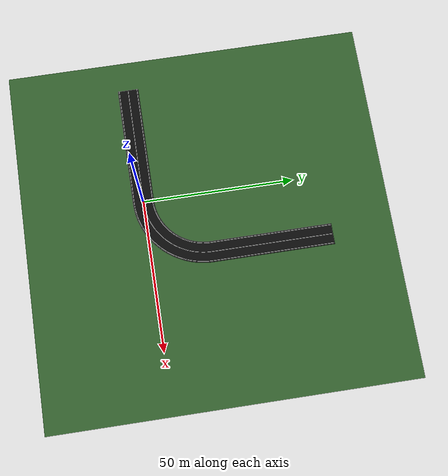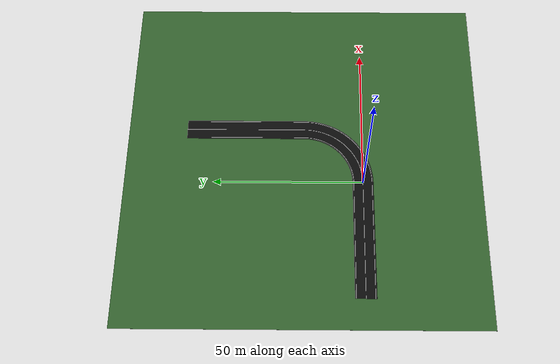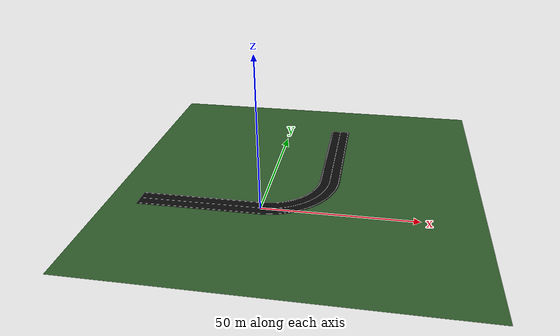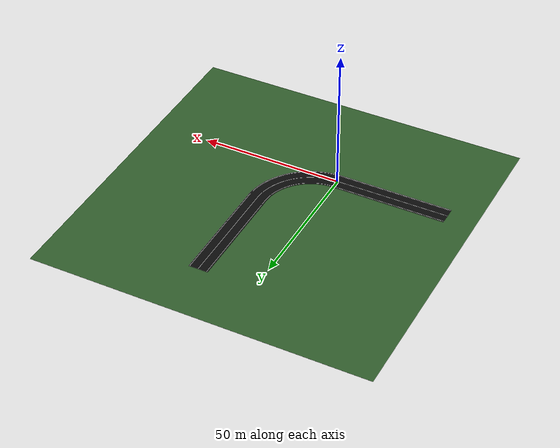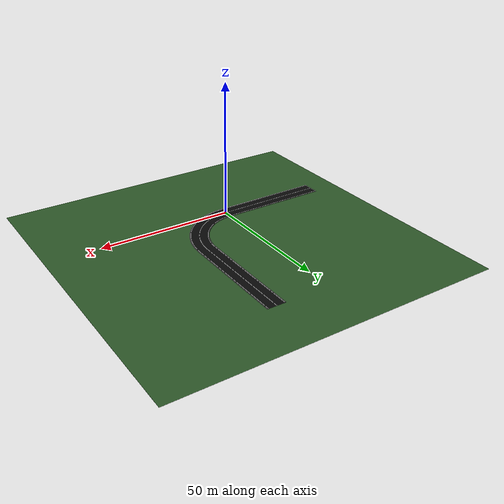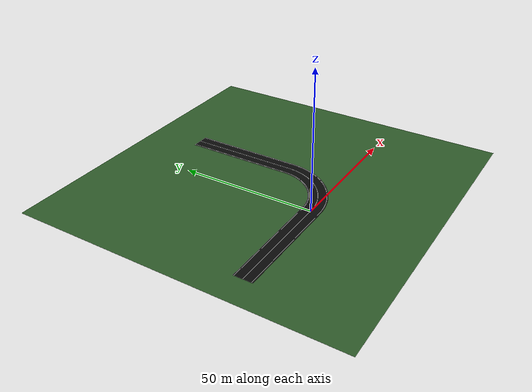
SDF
<?xml version="1.0" ?>
<sdf version="1.6">
  <world name="curved_road_world">
    <physics name="default_physics" type="ode">
      <max_step_size>0.001</max_step_size>
      <real_time_update_rate>1000</real_time_update_rate>
      <real_time_factor>1.0</real_time_factor>
    </physics>

    <scene>
      <ambient>0.45 0.45 0.45 1</ambient>
      <background>0.7 0.8 1.0 1</background>
      <shadows>true</shadows>
    </scene>

    <light type="directional" name="sun">
      <cast_shadows>true</cast_shadows>
      <pose>0 0 10 0 0 0</pose>
      <diffuse>0.8 0.8 0.8 1</diffuse>
      <specular>0.2 0.2 0.2 1</specular>
      <attenuation>
        <range>1000</range>
        <constant>0.9</constant>
        <linear>0.01</linear>
        <quadratic>0.001</quadratic>
      </attenuation>
      <direction>-0.5 0.1 -0.9</direction>
    </light>

    <model name="grass_ground">
      <static>true</static>
      <link name="ground_link">
        <collision name="ground_collision">
          <geometry>
            <box>
              <size>120 120 0.02</size>
            </box>
          </geometry>
        </collision>
        <visual name="ground_visual">
          <geometry>
            <box>
              <size>120 120 0.02</size>
            </box>
          </geometry>
          <material>
            <ambient>0.18 0.35 0.16 1</ambient>
            <diffuse>0.18 0.35 0.16 1</diffuse>
          </material>
        </visual>
      </link>
      <pose>10 20 -0.03 0 0 0</pose>
    </model>

    <include>
      <uri>model://curved_road</uri>
      <pose>0 0 0 0 0 0</pose>
    </include>
  </world>
</sdf>

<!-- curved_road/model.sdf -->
<sdf version="1.6">
  <model name="curved_road">
    <static>true</static>

    <link name="road_link">

      <visual name="road_visual">
        <geometry>
          <mesh>
            <uri>model://curved_road/meshes/road.obj</uri>
          </mesh>
        </geometry>
        <material>
          <ambient>0.025 0.025 0.025 1</ambient>
          <diffuse>0.035 0.035 0.035 1</diffuse>
          <specular>0.01 0.01 0.01 1</specular>
        </material>
      </visual>

      <visual name="left_edge_visual">
        <geometry>
          <mesh>
            <uri>model://curved_road/meshes/left_edge.obj</uri>
          </mesh>
        </geometry>
        <material>
          <ambient>1 1 1 1</ambient>
          <diffuse>1 1 1 1</diffuse>
        </material>
      </visual>

      <visual name="right_edge_visual">
        <geometry>
          <mesh>
            <uri>model://curved_road/meshes/right_edge.obj</uri>
          </mesh>
        </geometry>
        <material>
          <ambient>1 1 1 1</ambient>
          <diffuse>1 1 1 1</diffuse>
        </material>
      </visual>

      <visual name="centerline_visual">
        <geometry>
          <mesh>
            <uri>model://curved_road/meshes/centerline.obj</uri>
          </mesh>
        </geometry>
        <material>
          <ambient>1 1 1 1</ambient>
          <diffuse>1 1 1 1</diffuse>
        </material>
      </visual>

      <!-- Flat collision surface. Use this first. It is cheaper than mesh collision. -->
      <collision name="flat_road_collision">
        <geometry>
          <box>
            <size>100 100 0.02</size>
          </box>
        </geometry>
        <pose>0 20 0 0 0 0</pose>
      </collision>

    </link>
  </model>
</sdf>
